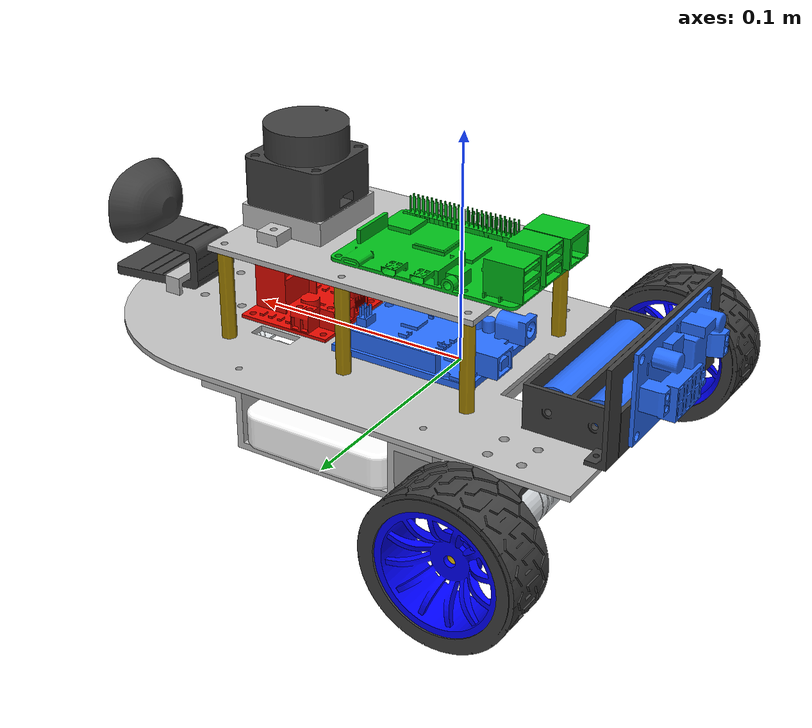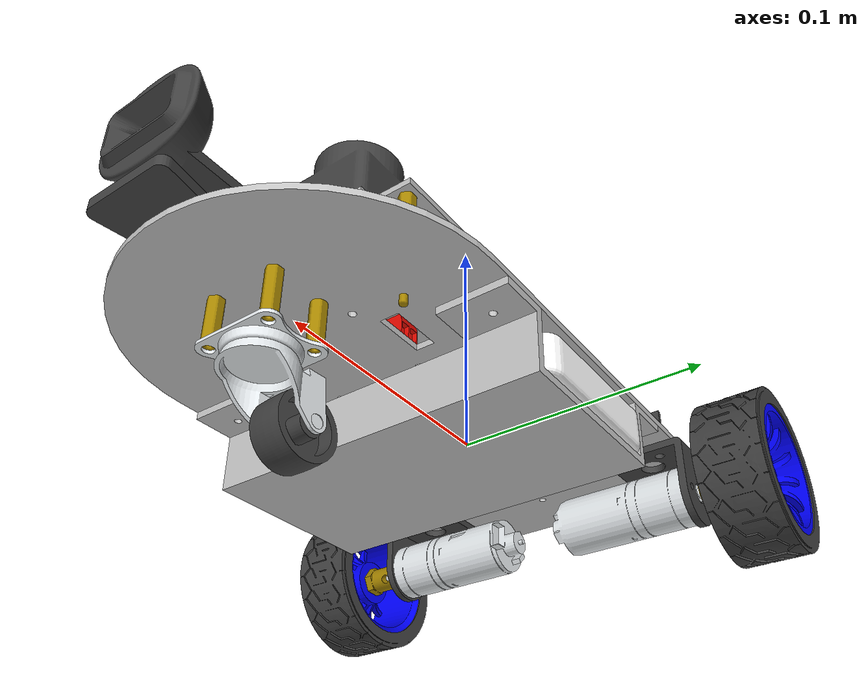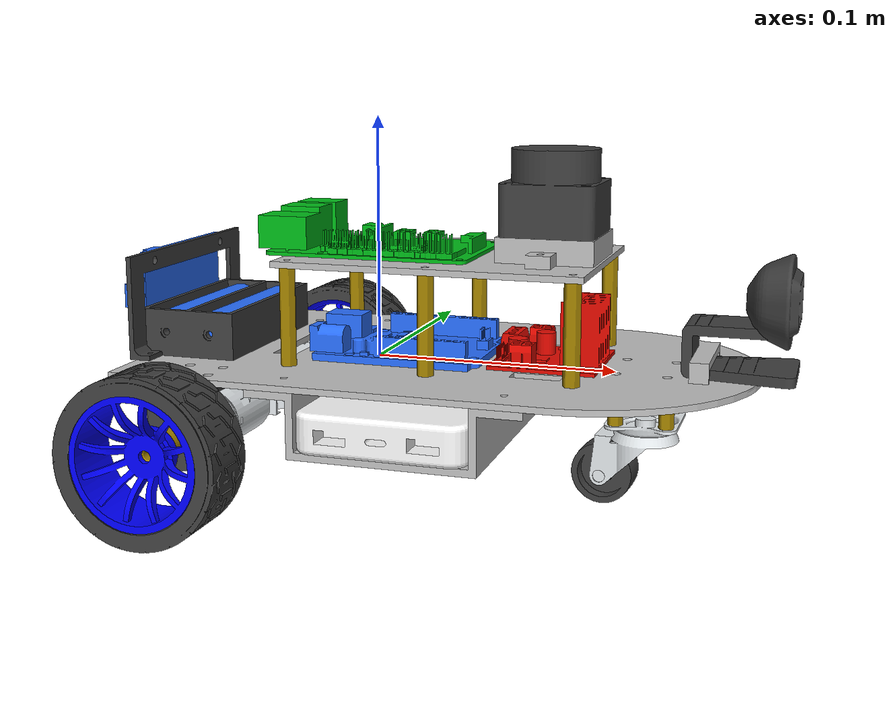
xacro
<?xml version="1.0" encoding="utf-8"?>
<robot xmlns:xacro="http://www.ros.org/wiki/xacro">

  <xacro:include filename="$(find diff_robot_dan_description)/urdf/materials_and_colors.xacro"/>

  <xacro:property name="caster_type" value="fixed" />

  <link name="base_link"/>

  <link
    name="base_platform">
    <inertial>
      <origin
        xyz="-4.2767E-06 0.029905 0.0013432"
        rpy="0 0 0" />
      <mass
        value="0.08062" />
      <inertia
        ixx="0.00037375"
        ixy="-1.0976E-08"
        ixz="-2.7281E-11"
        iyy="0.00012439"
        iyz="-7.8943E-07"
        izz="0.00049795" />
    </inertial>
    <visual>
      <origin
        xyz="0 0 0"
        rpy="0 0 0" />
      <geometry>
        <mesh
          filename="package://diff_robot_dan_description/meshes/base_platform.STL" />
      </geometry>
      <material name="grey_pla"/>
    </visual>
    <collision>
      <origin
        xyz="0 0 0"
        rpy="0 0 0" />
      <geometry>
        <mesh
          filename="package://diff_robot_dan_description/meshes/base_platform.STL" />
      </geometry>
    </collision>
  </link>

  <joint
    name="base_joint"
    type="fixed">
    <origin
      xyz="0 0 0"
      rpy="0 0 -1.5708" />
    <parent
      link="base_link" />
    <child
      link="base_platform" />
    <axis
      xyz="0 0 0" />
  </joint>

  <link name="base_footprint"/>

  <joint name="to_footprint" type="fixed">
    <parent
      link="base_platform"/>
    <child
      link="base_footprint"/>
    <axis
      xyz="0.0 0.0 0.0"/>
  </joint>

  <link
    name="motor_support_left">
    <inertial>
      <origin
        xyz="4.3741E-08 0.0086356 0.0087139"
        rpy="0 0 0" />
      <mass
        value="0.011753" />
      <inertia
        ixx="2.3658E-06"
        ixy="-4.3673E-12"
        ixz="-2.8469E-11"
        iyy="1.7995E-06"
        iyz="-6.6689E-07"
        izz="1.9957E-06" />
    </inertial>
    <visual>
      <origin
        xyz="0 0 0"
        rpy="1.5708 0 1.5708" />
      <geometry>
        <mesh
          filename="package://diff_robot_dan_description/meshes/motor_support_left.STL" />
      </geometry>
      <material name="black"/>
    </visual>
    <collision>
      <origin
        xyz="0 0 0"
        rpy="1.5708 0 1.5708" />
      <geometry>
        <mesh
          filename="package://diff_robot_dan_description/meshes/motor_support_left.STL" />
      </geometry>
    </collision>
  </link>
  <joint
    name="support_left_to_base"
    type="fixed">
    <origin
      xyz="-0.05605 -0.05525 0"
      rpy="0 1.5708 3.1416" />
    <parent
      link="base_platform" />
    <child
      link="motor_support_left" />
    <axis
      xyz="0 0 0" />
  </joint>
  <link
    name="motor_left">
    <inertial>
      <origin
        xyz="-7.2844E-06 -2.8965E-06 -0.0017141"
        rpy="0 0 0" />
      <mass
        value="0.069439" />
      <inertia
        ixx="2.1098E-05"
        ixy="-3.9135E-09"
        ixz="-3.1834E-09"
        iyy="2.1088E-05"
        iyz="-1.4966E-08"
        izz="4.9519E-06" />
    </inertial>
    <visual>
      <origin
        xyz="0 0 0"
        rpy="0 0 0" />
      <geometry>
        <mesh
          filename="package://diff_robot_dan_description/meshes/motor_left.STL" />
      </geometry>
      <material name="silver_metal"/>
    </visual>
    <collision>
      <origin
        xyz="0 0 0"
        rpy="0 0 0" />
      <geometry>
        <mesh
          filename="package://diff_robot_dan_description/meshes/motor_left.STL" />
      </geometry>
    </collision>
  </link>
  <joint
    name="motor_left_to_motor_support"
    type="fixed">
    <origin
      xyz="0.02025 0 -0.01155"
      rpy="0 0 -3.1416" />
    <parent
      link="motor_support_left" />
    <child
      link="motor_left" />
    <axis
      xyz="0 0 0" />
  </joint>
  <link
    name="shaft_left">
    <inertial>
      <origin
        xyz="9.3516E-05 -4.0811E-09 0.0062268"
        rpy="0 0 0" />
      <mass
        value="0.0012091" />
      <inertia
        ixx="1.7661E-08"
        ixy="-8.7073E-14"
        ixz="-2.7402E-10"
        iyy="1.7488E-08"
        iyz="-1.1687E-13"
        izz="2.3255E-09" />
    </inertial>
    <visual>
      <origin
        xyz="0 0 0"
        rpy="0 0 0" />
      <geometry>
        <mesh
          filename="package://diff_robot_dan_description/meshes/shaft_left.STL" />
      </geometry>
      <material name="silver_metal"/>
    </visual>
    <collision>
      <origin
        xyz="0 0 0"
        rpy="0 0 0" />
      <geometry>
        <mesh
          filename="package://diff_robot_dan_description/meshes/shaft_left.STL" />
      </geometry>
    </collision>
  </link>
  <joint
    name="shaft_left_to_motor"
    type="continuous">
    <origin
      xyz="9.7282E-05 0 0.026545"
      rpy="0 0 -1.3474" />
    <parent
      link="motor_left" />
    <child
      link="shaft_left" />
    <axis
      xyz="0 0 1" />
    <limit
      effort="1.0297"
      velocity="10.742" />
  </joint>
  <link
    name="coupling_left">
    <inertial>
      <origin
        xyz="-1.758E-08 0.011432 -5.9284E-10"
        rpy="0 0 0" />
      <mass
        value="0.015207" />
      <inertia
        ixx="7.3793E-07"
        ixy="-2.821E-12"
        ixz="4.7539E-13"
        iyy="2.7775E-07"
        iyz="-2.0427E-12"
        izz="7.4797E-07" />
    </inertial>
    <visual>
      <origin
        xyz="0 0 0"
        rpy="1.5708 0 0" />
      <geometry>
        <mesh
          filename="package://diff_robot_dan_description/meshes/coupling_left.STL" />
      </geometry>
      <material name="brass"/>
    </visual>
    <collision>
      <origin
        xyz="0 0 0"
        rpy="1.5708 0 0" />
      <geometry>
        <mesh
          filename="package://diff_robot_dan_description/meshes/coupling_left.STL" />
      </geometry>
    </collision>
  </link>
  <joint
    name="coupling_left_to_motor"
    type="fixed">
    <origin
      xyz="0 0 0.0046"
      rpy="0 0 1.7908" />
    <parent
      link="shaft_left" />
    <child
      link="coupling_left" />
    <axis
      xyz="0 0 0" />
  </joint>
  <link
    name="ring_left">
    <inertial>
      <origin
        xyz="1.4681E-08 -0.0013913 3.3977E-09"
        rpy="0 0 0" />
      <mass
        value="0.010918" />
      <inertia
        ixx="2.9186E-06"
        ixy="-5.2164E-12"
        ixz="-9.9865E-13"
        iyy="4.8444E-06"
        iyz="9.3002E-12"
        izz="2.9187E-06" />
    </inertial>
    <visual>
      <origin
        xyz="0 0 0"
        rpy="-1.5708 0 0" />
      <geometry>
        <mesh
          filename="package://diff_robot_dan_description/meshes/ring_left.STL" />
      </geometry>
      <material name="blue_metal"/>
    </visual>
    <collision>
      <origin
        xyz="0 0 0"
        rpy="-1.5708 0 0" />
      <geometry>
        <mesh
          filename="package://diff_robot_dan_description/meshes/ring_left.STL" />
      </geometry>
    </collision>
  </link>
  <joint
    name="ring_left_to_coupling"
    type="fixed">
    <origin
      xyz="0 0 0.021355"
      rpy="0 0 0" />
    <parent
      link="coupling_left" />
    <child
      link="ring_left" />
    <axis
      xyz="0 0 0" />
  </joint>

  <link
    name="neumatic_left">
    <inertial>
      <origin
        xyz="-5.051E-08 -1.2407E-06 -3.994E-10"
        rpy="0 0 0" />
      <mass
        value="0.039917" />
      <inertia
        ixx="1.9377E-05"
        ixy="2.9484E-13"
        ixz="1.4146E-13"
        iyy="3.4105E-05"
        iyz="6.8997E-12"
        izz="1.9378E-05" />
    </inertial>
    <visual>
      <origin
        xyz="0 0 0"
        rpy="1.5708 0 0" />
      <geometry>
        <mesh
          filename="package://diff_robot_dan_description/meshes/neumatic_left.STL" />
      </geometry>
      <material name="black"/>
    </visual>
    <collision>
      <origin
        xyz="0 0 0"
        rpy="1.5708 0 0" />
      <geometry>
        <sphere radius="0.033475"/>
        <!--mesh
          filename="package://diff_robot_dan_description/meshes/neumatic_left.STL" /-->
      </geometry>
    </collision>
  </link>

  <joint
    name="neumatic_left_to_ring"
    type="fixed">
    <origin
      xyz="0 0.00055 0"
      rpy="0 0 0" />
    <parent
      link="ring_left" />
    <child
      link="neumatic_left" />
    <axis
      xyz="0 0 0" />
  </joint>
  <link
    name="motor_support_right">
    <inertial>
      <origin
        xyz="4.3741E-08 0.0086356 0.0087139"
        rpy="0 0 0" />
      <mass
        value="0.011753" />
      <inertia
        ixx="2.3658E-06"
        ixy="-4.3673E-12"
        ixz="-2.8469E-11"
        iyy="1.7995E-06"
        iyz="-6.6689E-07"
        izz="1.9957E-06" />
    </inertial>
    <visual>
      <origin
        xyz="0 0 0"
        rpy="1.5708 0 1.5708" />
      <geometry>
        <mesh
          filename="package://diff_robot_dan_description/meshes/motor_support_right.STL" />
      </geometry>
      <material name="black"/>
    </visual>
    <collision>
      <origin
        xyz="0 0 0"
        rpy="1.5708 0 1.5708" />
      <geometry>
        <mesh
          filename="package://diff_robot_dan_description/meshes/motor_support_right.STL" />
      </geometry>
    </collision>
  </link>
  <joint
    name="support_right_to_base"
    type="fixed">
    <origin
      xyz="0.05605 -0.05525 0"
      rpy="0 1.5708 0" />
    <parent
      link="base_platform" />
    <child
      link="motor_support_right" />
    <axis
      xyz="0 0 0" />
  </joint>
  <link
    name="motor_right">
    <inertial>
      <origin
        xyz="-7.2843E-06 -2.8966E-06 -0.0017141"
        rpy="0 0 0" />
      <mass
        value="0.069439" />
      <inertia
        ixx="2.1098E-05"
        ixy="-3.9135E-09"
        ixz="-3.1834E-09"
        iyy="2.1088E-05"
        iyz="-1.4966E-08"
        izz="4.9519E-06" />
    </inertial>
    <visual>
      <origin
        xyz="0 0 0"
        rpy="0 0 0" />
      <geometry>
        <mesh
          filename="package://diff_robot_dan_description/meshes/motor_right.STL" />
      </geometry>
      <material name="silver_metal"/>
    </visual>
    <collision>
      <origin
        xyz="0 0 0"
        rpy="0 0 0" />
      <geometry>
        <mesh
          filename="package://diff_robot_dan_description/meshes/motor_right.STL" />
      </geometry>
    </collision>
  </link>
  <joint
    name="motor_right_to_support"
    type="fixed">
    <origin
      xyz="0.02025 0 -0.01155"
      rpy="0 0 -3.1416" />
    <parent
      link="motor_support_right" />
    <child
      link="motor_right" />
    <axis
      xyz="0 0 0" />
  </joint>
  <link
    name="shaft_right">
    <inertial>
      <origin
        xyz="9.35164931870833E-05 3.3094464453598E-08 0.0062267898913865"
        rpy="0 0 0" />
      <mass
        value="0.00120914331428052" />
      <inertia
        ixx="1.76613856649872E-08"
        ixy="-8.69060362380142E-14"
        ixz="-2.74018364433886E-10"
        iyy="1.74883320817116E-08"
        iyz="-1.1666347166096E-13"
        izz="2.32545172058691E-09" />
    </inertial>
    <visual>
      <origin
        xyz="0 0 0"
        rpy="0 0 0" />
      <geometry>
        <mesh
          filename="package://diff_robot_dan_description/meshes/shaft_right.STL" />
      </geometry>
      <material name="silver_metal"/>
    </visual>
    <collision>
      <origin
        xyz="0 0 0"
        rpy="0 0 0" />
      <geometry>
        <mesh
          filename="package://diff_robot_dan_description/meshes/shaft_right.STL" />
      </geometry>
    </collision>
  </link>
  <joint
    name="shaft_right_to_motor"
    type="continuous">
    <origin
      xyz="0 0 0.026545"
      rpy="0 0 -1.8068" />
    <parent
      link="motor_right" />
    <child
      link="shaft_right" />
    <axis
      xyz="0 0 -1" />
    <limit
      effort="1.0297"
      velocity="10.472" />
  </joint>
  <link
    name="coupling_right">
    <inertial>
      <origin
        xyz="-1.73707862399786E-08 0.0114319692475676 -3.0039553483574E-10"
        rpy="0 0 0" />
      <mass
        value="0.0152069037997272" />
      <inertia
        ixx="7.37926487293068E-07"
        ixy="-2.80610855598411E-12"
        ixz="4.83132664105218E-13"
        iyy="2.77753480931107E-07"
        iyz="-2.03744847744167E-12"
        izz="7.47968244758709E-07" />
    </inertial>
    <visual>
      <origin
        xyz="0 0 0"
        rpy="1.5708 0 0" />
      <geometry>
        <mesh
          filename="package://diff_robot_dan_description/meshes/coupling_right.STL" />
      </geometry>
      <material name="brass"/>
    </visual>
    <collision>
      <origin
        xyz="0 0 0"
        rpy="1.5708 0 0" />
      <geometry>
        <mesh
          filename="package://diff_robot_dan_description/meshes/coupling_right.STL" />
      </geometry>
    </collision>
  </link>
  <joint
    name="copling_right_to_shaft"
    type="fixed">
    <origin
      xyz="0 0 0.0046"
      rpy="0 0 -1.7908" />
    <parent
      link="shaft_right" />
    <child
      link="coupling_right" />
    <axis
      xyz="0 0 0" />
  </joint>
  <link
    name="ring_right">
    <inertial>
      <origin
        xyz="1.4681E-08 -0.0013913 3.3977E-09"
        rpy="0 0 0" />
      <mass
        value="0.010918" />
      <inertia
        ixx="2.9186E-06"
        ixy="-5.2164E-12"
        ixz="-9.9865E-13"
        iyy="4.8444E-06"
        iyz="9.3002E-12"
        izz="2.9187E-06" />
    </inertial>
    <visual>
      <origin
        xyz="0 0 0"
        rpy="-1.5708 0 0" />
      <geometry>
        <mesh
          filename="package://diff_robot_dan_description/meshes/ring_right.STL" />
      </geometry>
      <material name="blue_metal"/>
    </visual>
    <collision>
      <origin
        xyz="0 0 0"
        rpy="-1.5708 0 0" />
      <geometry>
        <mesh
          filename="package://diff_robot_dan_description/meshes/ring_right.STL" />
      </geometry>
    </collision>
  </link>
  <joint
    name="ring_right_to_coupling"
    type="fixed">
    <origin
      xyz="0 0 0.021355"
      rpy="0 0 0" />
    <parent
      link="coupling_right" />
    <child
      link="ring_right" />
    <axis
      xyz="0 0 0" />
  </joint>
  <link
    name="neumatic_right">
    <inertial>
      <origin
        xyz="-5.04288356628635E-08 -1.24068466458849E-06 -4.29302794702213E-10"
        rpy="0 0 0" />
      <mass
        value="0.039916568660989" />
      <inertia
        ixx="1.93774188193623E-05"
        ixy="2.86801069507243E-13"
        ixz="1.46766810443803E-13"
        iyy="3.41045674039519E-05"
        iyz="6.90707373043649E-12"
        izz="1.9377801310557E-05" />
    </inertial>
    <visual>
      <origin
        xyz="0 0 0"
        rpy="1.5708 0 0" />
      <geometry>
        <mesh
          filename="package://diff_robot_dan_description/meshes/neumatic_right.STL" />
      </geometry>
      <material name="black"/>
    </visual>
    <collision>
      <origin
        xyz="0 0 0"
        rpy="1.5708 0 0" />
      <geometry>
        <sphere radius="0.033475"/>
        <!--mesh
          filename="package://diff_robot_dan_description/meshes/neumatic_right.STL" /-->
      </geometry>
    </collision>
  </link>
  <joint
    name="neumatic_right_to_ring"
    type="fixed">
    <origin
      xyz="0 0.00055 0"
      rpy="0 0 0" />
    <parent
      link="ring_right" />
    <child
      link="neumatic_right" />
    <axis
      xyz="0 0 0" />
  </joint>
  <link
    name="battery_holder">
    <inertial>
      <origin
        xyz="-1.9815E-10 4.9468E-10 0.0069931"
        rpy="0 0 0" />
      <mass
        value="0.021448" />
      <inertia
        ixx="4.8979E-06"
        ixy="1.0061E-14"
        ixz="2.4403E-11"
        iyy="1.3843E-05"
        iyz="-6.5693E-15"
        izz="1.7136E-05" />
    </inertial>
    <visual>
      <origin
        xyz="0 0 0"
        rpy="0 0 0" />
      <geometry>
        <mesh
          filename="package://diff_robot_dan_description/meshes/battery_holder.STL" />
      </geometry>
      <material name="black"/>
    </visual>
    <collision>
      <origin
        xyz="0 0 0"
        rpy="0 0 0" />
      <geometry>
        <mesh
          filename="package://diff_robot_dan_description/meshes/battery_holder.STL" />
      </geometry>
    </collision>
  </link>
  <joint
    name="battery_to_base"
    type="fixed">
    <origin
      xyz="0 -0.07 0.0025"
      rpy="0 0 0" />
    <parent
      link="base_platform" />
    <child
      link="battery_holder" />
    <axis
      xyz="0 0 0" />
  </joint>
  <link
    name="battery_1">
    <inertial>
      <origin
        xyz="1.398E-08 1.9976E-09 0.00024774"
        rpy="0 0 0" />
      <mass
        value="0.16303" />
      <inertia
        ixx="6.0905E-05"
        ixy="5.9989E-13"
        ixz="-4.06E-11"
        iyy="6.0905E-05"
        iyz="-3.4902E-11"
        izz="5.8658E-06" />
    </inertial>
    <visual>
      <origin
        xyz="0 0 0"
        rpy="0 0 0" />
      <geometry>
        <mesh
          filename="package://diff_robot_dan_description/meshes/battery_1.STL" />
      </geometry>
      <material name="blue_electronic"/>
    </visual>
    <collision>
      <origin
        xyz="0 0 0"
        rpy="0 0 0" />
      <geometry>
        <mesh
          filename="package://diff_robot_dan_description/meshes/battery_1.STL" />
      </geometry>
    </collision>
  </link>
  <joint
    name="battery_1_to_holder"
    type="fixed">
    <origin
      xyz="0 -0.00975 0.01"
      rpy="-1.5708 0 -1.5708" />
    <parent
      link="battery_holder" />
    <child
      link="battery_1" />
    <axis
      xyz="0 0 1" />
  </joint>
  <link
    name="battery_2">
    <inertial>
      <origin
        xyz="1.398E-08 -1.9976E-09 -0.00024774"
        rpy="0 0 0" />
      <mass
        value="0.16303" />
      <inertia
        ixx="6.0905E-05"
        ixy="-5.9989E-13"
        ixz="4.06E-11"
        iyy="6.0905E-05"
        iyz="-3.4902E-11"
        izz="5.8658E-06" />
    </inertial>
    <visual>
      <origin
        xyz="0 0 0"
        rpy="0 0 0" />
      <geometry>
        <mesh
          filename="package://diff_robot_dan_description/meshes/battery_2.STL" />
      </geometry>
      <material name="blue_electronic"/>
    </visual>
    <collision>
      <origin
        xyz="0 0 0"
        rpy="0 0 0" />
      <geometry>
        <mesh
          filename="package://diff_robot_dan_description/meshes/battery_2.STL" />
      </geometry>
    </collision>
  </link>
  <joint
    name="battery_2_to_holder"
    type="fixed">
    <origin
      xyz="0 0.00975 0.01"
      rpy="1.5708 0 1.5708" />
    <parent
      link="battery_holder" />
    <child
      link="battery_2" />
    <axis
      xyz="0 0 1" />
  </joint>
  <link
    name="arduino">
    <inertial>
      <origin
        xyz="-0.0038426 0.0032752 -6.6854E-05"
        rpy="0 0 0" />
      <mass
        value="0.036702" />
      <inertia
        ixx="1.0144E-05"
        ixy="5.699E-07"
        ixz="-1.3819E-07"
        iyy="2.5461E-05"
        iyz="2.0305E-08"
        izz="1.6029E-05" />
    </inertial>
    <visual>
      <origin
        xyz="0 0 0"
        rpy="0 0 0" />
      <geometry>
        <mesh
          filename="package://diff_robot_dan_description/meshes/arduino.STL" />
      </geometry>
      <material name="blue_electronic"/>
    </visual>
    <collision>
      <origin
        xyz="0 0 0"
        rpy="0 0 0" />
      <geometry>
        <mesh
          filename="package://diff_robot_dan_description/meshes/arduino.STL" />
      </geometry>
    </collision>
  </link>
  <joint
    name="arduino_to_base"
    type="fixed">
    <origin
      xyz="0.001 0.0149 0.0025"
      rpy="1.5708 0 1.5708" />
    <parent
      link="base_platform" />
    <child
      link="arduino" />
    <axis
      xyz="0 0 0" />
  </joint>
  <link
    name="driver">
    <inertial>
      <origin
        xyz="-0.00053794 0.0010488 0.0067706"
        rpy="0 0 0" />
      <mass
        value="0.021255" />
      <inertia
        ixx="4.3343E-06"
        ixy="-1.4594E-07"
        ixz="-3.4291E-09"
        iyy="3.3344E-06"
        iyz="-7.0259E-07"
        izz="5.8242E-06" />
    </inertial>
    <visual>
      <origin
        xyz="0 0 0"
        rpy="0 0 0" />
      <geometry>
        <mesh
          filename="package://diff_robot_dan_description/meshes/driver.STL" />
      </geometry>
      <material name="red_electronic"/>
    </visual>
    <collision>
      <origin
        xyz="0 0 0"
        rpy="0 0 0" />
      <geometry>
        <mesh
          filename="package://diff_robot_dan_description/meshes/driver.STL" />
      </geometry>
    </collision>
  </link>
  <joint
    name="driver_to_base"
    type="fixed">
    <origin
      xyz="0 0.07415 0.0025"
      rpy="0 0 0" />
    <parent
      link="base_platform" />
    <child
      link="driver" />
    <axis
      xyz="0 0 0" />
  </joint>
  <link
    name="hex_support_s1">
    <inertial>
      <origin
        xyz="-3.873E-08 -1.4267E-09 0.0089627"
        rpy="0 0 0" />
      <mass
        value="0.00039676" />
      <inertia
        ixx="1.1512E-08"
        ixy="3.4795E-15"
        ixz="1.7979E-15"
        iyy="1.1511E-08"
        iyz="5.6571E-15"
        izz="1.948E-09" />
    </inertial>
    <visual>
      <origin
        xyz="0 0 0"
        rpy="0 0 0" />
      <geometry>
        <mesh
          filename="package://diff_robot_dan_description/meshes/hex_support_s1.STL" />
      </geometry>
      <material name="brass"/>
    </visual>
    <collision>
      <origin
        xyz="0 0 0"
        rpy="0 0 0" />
      <geometry>
        <mesh
          filename="package://diff_robot_dan_description/meshes/hex_support_s1.STL" />
      </geometry>
    </collision>
  </link>
  <joint
    name="hex_support_s1_to_base"
    type="fixed">
    <origin
      xyz="0.01285 0.1025 0"
      rpy="-3.1416 0 0.5236" />
    <parent
      link="base_platform" />
    <child
      link="hex_support_s1" />
    <axis
      xyz="0 0 0" />
  </joint>
  <link
    name="hex_support_s2">
    <inertial>
      <origin
        xyz="-3.873E-08 -1.4267E-09 0.0089627"
        rpy="0 0 0" />
      <mass
        value="0.00039676" />
      <inertia
        ixx="1.1512E-08"
        ixy="3.4795E-15"
        ixz="1.7979E-15"
        iyy="1.1511E-08"
        iyz="5.6571E-15"
        izz="1.948E-09" />
    </inertial>
    <visual>
      <origin
        xyz="0 0 0"
        rpy="0 0 0" />
      <geometry>
        <mesh
          filename="package://diff_robot_dan_description/meshes/hex_support_s2.STL" />
      </geometry>
      <material name="brass"/>
    </visual>
    <collision>
      <origin
        xyz="0 0 0"
        rpy="0 0 0" />
      <geometry>
        <mesh
          filename="package://diff_robot_dan_description/meshes/hex_support_s2.STL" />
      </geometry>
    </collision>
  </link>
  <joint
    name="hex_support_s2_to_base"
    type="fixed">
    <origin
      xyz="0.01285 0.1225 -0.0179"
      rpy="0 0 -0.5236" />
    <parent
      link="base_platform" />
    <child
      link="hex_support_s2" />
    <axis
      xyz="0 0 0" />
  </joint>
  <link
    name="hex_support_s3">
    <inertial>
      <origin
        xyz="-3.7544E-08 -2.1128E-09 0.0089627"
        rpy="0 0 0" />
      <mass
        value="0.00039676" />
      <inertia
        ixx="1.1512E-08"
        ixy="3.3218E-15"
        ixz="1.8189E-15"
        iyy="1.1511E-08"
        iyz="5.6406E-15"
        izz="1.948E-09" />
    </inertial>
    <visual>
      <origin
        xyz="0 0 0"
        rpy="0 0 0" />
      <geometry>
        <mesh
          filename="package://diff_robot_dan_description/meshes/hex_support_s3.STL" />
      </geometry>
      <material name="brass"/>
    </visual>
    <collision>
      <origin
        xyz="0 0 0"
        rpy="0 0 0" />
      <geometry>
        <mesh
          filename="package://diff_robot_dan_description/meshes/hex_support_s3.STL" />
      </geometry>
    </collision>
  </link>
  <joint
    name="hex_support_s3_to_base"
    type="fixed">
    <origin
      xyz="-0.01285 0.1025 0"
      rpy="-3.1416 0 2.618" />
    <parent
      link="base_platform" />
    <child
      link="hex_support_s3" />
    <axis
      xyz="0 0 0" />
  </joint>
  <link
    name="hex_support_s4">
    <inertial>
      <origin
        xyz="-3.7544E-08 -2.1128E-09 0.0089627"
        rpy="0 0 0" />
      <mass
        value="0.00039676" />
      <inertia
        ixx="1.1512E-08"
        ixy="3.3218E-15"
        ixz="1.8189E-15"
        iyy="1.1511E-08"
        iyz="5.6406E-15"
        izz="1.948E-09" />
    </inertial>
    <visual>
      <origin
        xyz="0 0 0"
        rpy="0 0 0" />
      <geometry>
        <mesh
          filename="package://diff_robot_dan_description/meshes/hex_support_s4.STL" />
      </geometry>
      <material name="brass"/>
    </visual>
    <collision>
      <origin
        xyz="0 0 0"
        rpy="0 0 0" />
      <geometry>
        <mesh
          filename="package://diff_robot_dan_description/meshes/hex_support_s4.STL" />
      </geometry>
    </collision>
  </link>
  <joint
    name="hex_support_s4_to_base"
    type="fixed">
    <origin
      xyz="-0.01285 0.1225 -0.0179"
      rpy="0 0 -2.618" />
    <parent
      link="base_platform" />
    <child
      link="hex_support_s4" />
    <axis
      xyz="0 0 0" />
  </joint>
  <link
    name="center_wheel_support">
    <inertial>
      <origin
        xyz="-7.8425E-12 0.0025704 -1.0795E-09"
        rpy="0 0 0" />
      <mass
        value="0.010585" />
      <inertia
        ixx="6.8468E-07"
        ixy="4.0238E-17"
        ixz="-7.8111E-14"
        iyy="1.2612E-06"
        iyz="-3.3077E-14"
        izz="6.2217E-07" />
    </inertial>
    <visual>
      <origin
        xyz="0 0 0"
        rpy="0 0 0" />
      <geometry>
        <mesh
          filename="package://diff_robot_dan_description/meshes/center_wheel_support.STL" />
      </geometry>
      <material name="silver_metal"/>
    </visual>
    <collision>
      <origin
        xyz="0 0 0"
        rpy="0 0 0" />
      <geometry>
        <mesh
          filename="package://diff_robot_dan_description/meshes/center_wheel_support.STL" />
      </geometry>
    </collision>
  </link>
  <joint
    name="center_support_to_base"
    type="fixed">
    <origin
      xyz="0 0.1125 -0.0179"
      rpy="-1.5708 0 1.5708" />
    <parent
      link="base_platform" />
    <child
      link="center_wheel_support" />
    <axis
      xyz="0 0 0" />
  </joint>
  <link
    name="roll_support">
    <inertial>
      <origin
        xyz="-0.0059893 0.0047248 3.4874E-09"
        rpy="0 0 0" />
      <mass
        value="0.016331" />
      <inertia
        ixx="1.5018E-06"
        ixy="3.2726E-07"
        ixz="-1.7434E-13"
        iyy="2.2832E-06"
        iyz="-3.5076E-13"
        izz="1.5926E-06" />
    </inertial>
    <visual>
      <origin
        xyz="0 0 0"
        rpy="0 0 0" />
      <geometry>
        <mesh
          filename="package://diff_robot_dan_description/meshes/roll_support.STL" />
      </geometry>
      <material name="silver_metal"/>
    </visual>
    <collision>
      <origin
        xyz="0 0 0"
        rpy="0 0 0" />
      <geometry>
        <mesh
          filename="package://diff_robot_dan_description/meshes/roll_support.STL" />
      </geometry>
    </collision>
  </link>
  <joint
    name="roll_support_to_wheel_support"
    type="${caster_type}">
    <origin
      xyz="0 0.004693 0"
      rpy="0 0.066802 0" />
    <parent
      link="center_wheel_support" />
    <child
      link="roll_support" />
    <axis
      xyz="0 1 0" />
  </joint>
  <link
    name="central_shaft">
    <inertial>
      <origin
        xyz="0 -2.7756E-17 2.4286E-17"
        rpy="0 0 0" />
      <mass
        value="0.0031416" />
      <inertia
        ixx="1.0963E-07"
        ixy="2.647E-23"
        ixz="1.7288E-22"
        iyy="1.0963E-07"
        iyz="6.4184E-23"
        izz="9.8175E-09" />
    </inertial>
    <visual>
      <origin
        xyz="0 0 0"
        rpy="0 0 0" />
      <geometry>
        <mesh
          filename="package://diff_robot_dan_description/meshes/central_shaft.STL" />
      </geometry>
      <material name="silver_metal"/>
    </visual>
    <collision>
      <origin
        xyz="0 0 0"
        rpy="0 0 0" />
      <geometry>
        <mesh
          filename="package://diff_robot_dan_description/meshes/central_shaft.STL" />
      </geometry>
    </collision>
  </link>
  <joint
    name="shaft_to_roll_support"
    type="${caster_type}">
    <origin
      xyz="-0.016111 0.018272 4.708E-05"
      rpy="0 0 0" />
    <parent
      link="roll_support" />
    <child
      link="central_shaft" />
    <axis
      xyz="0 0 1" />
  </joint>
  <link
    name="central_wheel">
    <inertial>
      <origin
        xyz="-5.2042E-18 1.641E-14 -4.2882E-15"
        rpy="0 0 0" />
      <mass
        value="0.0043493" />
      <inertia
        ixx="4.2486E-07"
        ixy="-9.9282E-22"
        ixz="2.0349E-22"
        iyy="2.6998E-07"
        iyz="-1.1978E-21"
        izz="2.6998E-07" />
    </inertial>
    <visual>
      <origin
        xyz="0 0 0"
        rpy="0 0 0" />
      <geometry>
        <mesh
          filename="package://diff_robot_dan_description/meshes/central_wheel.STL" />
      </geometry>
      <material name="black"/>
    </visual>
    <collision>
      <origin
        xyz="0 0 0"
        rpy="0 0 0" />
      <geometry>
        <sphere radius="0.0127"/>
        <!--mesh
          filename="package://diff_robot_dan_description/meshes/central_wheel.STL" /-->
      </geometry>
    </collision>
  </link>
  <joint
    name="central_wheel_to_shaft"
    type="fixed">
    <origin
      xyz="0 0 1.4798E-05"
      rpy="2.4245 1.5708 0" />
    <parent
      link="central_shaft" />
    <child
      link="central_wheel" />
    <axis
      xyz="0 0 0" />
  </joint>
  <link
    name="sup_platform">
    <inertial>
      <origin
        xyz="-9.3058E-10 -8.7809E-06 0.00125"
        rpy="0 0 0" />
      <mass
        value="0.026875" />
      <inertia
        ixx="3.4898E-05"
        ixy="2.6462E-14"
        ixz="-1.1073E-19"
        iyy="1.6106E-05"
        iyz="2.362E-15"
        izz="5.0976E-05" />
    </inertial>
    <visual>
      <origin
        xyz="0 0 0"
        rpy="0 0 0" />
      <geometry>
        <mesh
          filename="package://diff_robot_dan_description/meshes/sup_platform.STL" />
      </geometry>
      <material name="grey_pla"/>
    </visual>
    <collision>
      <origin
        xyz="0 0 0"
        rpy="0 0 0" />
      <geometry>
        <mesh
          filename="package://diff_robot_dan_description/meshes/sup_platform.STL" />
      </geometry>
    </collision>
  </link>
  <joint
    name="sup_platform_to_base"
    type="fixed">
    <origin
      xyz="0 0.0325 0.0424"
      rpy="0 0 0" />
    <parent
      link="base_platform" />
    <child
      link="sup_platform" />
    <axis
      xyz="0 0 0" />
  </joint>
  <link
    name="raspberry">
    <inertial>
      <origin
        xyz="-0.012157 0.00086825 0.0050276"
        rpy="0 0 0" />
      <mass
        value="0.040232" />
      <inertia
        ixx="1.1791E-05"
        ixy="-8.0579E-08"
        ixz="2.863E-06"
        iyy="2.6906E-05"
        iyz="-5.6994E-07"
        izz="3.6557E-05" />
    </inertial>
    <visual>
      <origin
        xyz="0 0 0"
        rpy="0 0 0" />
      <geometry>
        <mesh
          filename="package://diff_robot_dan_description/meshes/raspberry.STL" />
      </geometry>
      <material name="green_electronic"/>
    </visual>
    <collision>
      <origin
        xyz="0 0 0"
        rpy="0 0 0" />
      <geometry>
        <mesh
          filename="package://diff_robot_dan_description/meshes/raspberry.STL" />
      </geometry>
    </collision>
  </link>
  <joint
    name="raspberry_to_sup_base"
    type="fixed">
    <origin
      xyz="0.0023552 -0.030064 0.0025"
      rpy="-0.061358 0 1.5708" />
    <parent
      link="sup_platform" />
    <child
      link="raspberry" />
    <axis
      xyz="0 0 0" />
  </joint>
  <link
    name="lidar_base">
    <inertial>
      <origin
        xyz="4.76737475267162E-09 -2.34376004715209E-10 0.00517211597652074"
        rpy="0 0 0" />
      <mass
        value="0.0170174944442866" />
      <inertia
        ixx="2.30741133256961E-06"
        ixy="-1.10315764453569E-07"
        ixz="-1.3170258630919E-12"
        iyy="2.87577287694704E-06"
        iyz="1.11832991479685E-13"
        izz="4.78074170602697E-06" />
    </inertial>
    <visual>
      <origin
        xyz="0 0 0"
        rpy="0 0 0" />
      <geometry>
        <mesh
          filename="package://diff_robot_dan_description/meshes/lidar_base.STL" />
      </geometry>
      <material name="grey_pla"/>
    </visual>
    <collision>
      <origin
        xyz="0 0 0"
        rpy="0 0 0" />
      <geometry>
        <mesh
          filename="package://diff_robot_dan_description/meshes/lidar_base.STL" />
      </geometry>
    </collision>
  </link>
  <joint
    name="lidar_base_to_sup_base"
    type="fixed">
    <origin
      xyz="0 0.042 0.0025"
      rpy="0 0 0" />
    <parent
      link="sup_platform" />
    <child
      link="lidar_base" />
    <axis
      xyz="0 0 0" />
  </joint>
  <link
    name="lidar">
    <inertial>
      <origin
        xyz="-8.65987423912112E-05 3.00342080120973E-07 -0.0158709631049187"
        rpy="0 0 0" />
      <mass
        value="0.0583443536768669" />
      <inertia
        ixx="1.11767591923787E-05"
        ixy="8.19309373146885E-08"
        ixz="6.12677214969589E-08"
        iyy="1.1094235674574E-05"
        iyz="3.01401445393558E-10"
        izz="1.24859796770116E-05" />
    </inertial>
    <visual>
      <origin
        xyz="0 0 0"
        rpy="0 0 0" />
      <geometry>
        <mesh
          filename="package://diff_robot_dan_description/meshes/lidar.STL" />
      </geometry>
      <material name="black"/>
    </visual>
    <collision>
      <origin
        xyz="0 0 0"
        rpy="0 0 0" />
      <geometry>
        <mesh
          filename="package://diff_robot_dan_description/meshes/lidar.STL" />
      </geometry>
    </collision>
  </link>
  <joint
    name="lidar_to_lidar_base"
    type="fixed">
    <origin
      xyz="0 0 0.01"
      rpy="-3.1416 0 -1.5708" />
    <parent
      link="lidar_base" />
    <child
      link="lidar" />
    <axis
      xyz="0 0 0" />
  </joint>
  <link
    name="power_bank_support">
    <inertial>
      <origin
        xyz="-4.3276E-10 -0.034501 -0.018512"
        rpy="0 0 0" />
      <mass
        value="0.054871" />
      <inertia
        ixx="5.3299E-05"
        ixy="6.7817E-15"
        ixz="3.5306E-13"
        iyy="0.00010525"
        iyz="1.0405E-09"
        izz="0.0001506" />
    </inertial>
    <visual>
      <origin
        xyz="0 0 0"
        rpy="0 0 0" />
      <geometry>
        <mesh
          filename="package://diff_robot_dan_description/meshes/power_bank_support.STL" />
      </geometry>
      <material name="grey_pla"/>
    </visual>
    <collision>
      <origin
        xyz="0 0 0"
        rpy="0 0 0" />
      <geometry>
        <mesh
          filename="package://diff_robot_dan_description/meshes/power_bank_support.STL" />
      </geometry>
    </collision>
  </link>
  <joint
    name="power_support_to_base"
    type="fixed">
    <origin
      xyz="0 0.059586 0"
      rpy="0 0 0" />
    <parent
      link="base_platform" />
    <child
      link="power_bank_support" />
    <axis
      xyz="0 0 0" />
  </joint>
  <link
    name="power_bank">
    <inertial>
      <origin
        xyz="-0.00068925 -1.3878E-17 0.0080025"
        rpy="0 0 0" />
      <mass
        value="0.20175" />
      <inertia
        ixx="8.2243E-05"
        ixy="-1.4837E-18"
        ixz="-3.5118E-08"
        iyy="0.00035012"
        iyz="3.8612E-13"
        izz="0.00042374" />
    </inertial>
    <visual>
      <origin
        xyz="0 0 0"
        rpy="0 0 0" />
      <geometry>
        <mesh
          filename="package://diff_robot_dan_description/meshes/power_bank.STL" />
      </geometry>
      <material name="white"/>
    </visual>
    <collision>
      <origin
        xyz="0 0 0"
        rpy="0 0 0" />
      <geometry>
        <mesh
          filename="package://diff_robot_dan_description/meshes/power_bank.STL" />
      </geometry>
    </collision>
  </link>
  <joint
    name="power_bank_to_support"
    type="fixed">
    <origin
      xyz="0 -0.03475 -0.023"
      rpy="0 0 0" />
    <parent
      link="power_bank_support" />
    <child
      link="power_bank" />
    <axis
      xyz="0 0 0" />
  </joint>
  <link
    name="camera">
    <inertial>
      <origin
        xyz="9.7623E-09 0.0001601 -0.0081003"
        rpy="0 0 1.5707" />
      <mass
        value="0.02241" />
      <inertia
        ixx="6.8681E-06"
        ixy="-2.8862E-12"
        ixz="6.9612E-14"
        iyy="5.8417E-06"
        iyz="1.5201E-06"
        izz="4.866E-06" />
    </inertial>
    <visual>
      <origin
        xyz="0 0 0"
        rpy="0 0 1.5707" />
      <geometry>
        <mesh
          filename="package://diff_robot_dan_description/meshes/camera.STL" />
      </geometry>
      <material name="black"/>
    </visual>
    <collision>
      <origin
        xyz="0 0 0"
        rpy="0 0 1.5707" />
      <geometry>
        <mesh
          filename="package://diff_robot_dan_description/meshes/camera.STL" />
      </geometry>
    </collision>
  </link>
  <joint
    name="camera_to_base"
    type="fixed">
    <origin
      xyz="0 0.15525 0.0323"
      rpy="0 0 1.5707" />
    <parent
      link="base_platform" />
    <child
      link="camera" />
    <axis
      xyz="0 0 0" />
  </joint>
  <link
    name="hex_support_m1">
    <inertial>
      <origin
        xyz="-1.2775E-08 6.9871E-10 0.018649"
        rpy="0 0 0" />
      <mass
        value="0.010437" />
      <inertia
        ixx="1.4892E-06"
        ixy="5.2591E-15"
        ixz="3.3325E-12"
        iyy="1.4892E-06"
        iyz="3.8585E-13"
        izz="5.171E-08" />
    </inertial>
    <visual>
      <origin
        xyz="0 0 0"
        rpy="0 0 0" />
      <geometry>
        <mesh
          filename="package://diff_robot_dan_description/meshes/hex_support_m1.STL" />
      </geometry>
      <material name="brass"/>
    </visual>
    <collision>
      <origin
        xyz="0 0 0"
        rpy="0 0 0" />
      <geometry>
        <mesh
          filename="package://diff_robot_dan_description/meshes/hex_support_m1.STL" />
      </geometry>
    </collision>
  </link>
  <joint
    name="hex_support_m1_to_base"
    type="fixed">
    <origin
      xyz="0.0375 -0.025 0.0025"
      rpy="0 0 2.618" />
    <parent
      link="base_platform" />
    <child
      link="hex_support_m1" />
    <axis
      xyz="0 0 0" />
  </joint>
  <link
    name="hex_support_m2">
    <inertial>
      <origin
        xyz="-1.28962488465945E-08 4.87893031531073E-10 0.0186494267227174"
        rpy="0 0 0" />
      <mass
        value="0.0104370763004655" />
      <inertia
        ixx="1.48922995809896E-06"
        ixy="3.89533633544294E-15"
        ixz="3.35524402215023E-12"
        iyy="1.48922882736901E-06"
        iyz="4.25322339240719E-13"
        izz="5.17103699125775E-08" />
    </inertial>
    <visual>
      <origin
        xyz="0 0 0"
        rpy="0 0 0" />
      <geometry>
        <mesh
          filename="package://diff_robot_dan_description/meshes/hex_support_m2.STL" />
      </geometry>
      <material name="brass"/>
    </visual>
    <collision>
      <origin
        xyz="0 0 0"
        rpy="0 0 0" />
      <geometry>
        <mesh
          filename="package://diff_robot_dan_description/meshes/hex_support_m2.STL" />
      </geometry>
    </collision>
  </link>
  <joint
    name="hex_support_m2_to_base"
    type="fixed">
    <origin
      xyz="0.0375 0.0325 0.0025"
      rpy="0 0 -2.618" />
    <parent
      link="base_platform" />
    <child
      link="hex_support_m2" />
    <axis
      xyz="0 0 0" />
  </joint>
  <link
    name="hex_support_m3">
    <inertial>
      <origin
        xyz="-1.27745335698481E-08 6.9871051999737E-10 0.0186494267227175"
        rpy="0 0 0" />
      <mass
        value="0.0104370763004665" />
      <inertia
        ixx="1.48922995829572E-06"
        ixy="5.25911840813087E-15"
        ixz="3.3324538622836E-12"
        iyy="1.48922882572881E-06"
        iyz="3.85848631953205E-13"
        izz="5.17103684689377E-08" />
    </inertial>
    <visual>
      <origin
        xyz="0 0 0"
        rpy="0 0 0" />
      <geometry>
        <mesh
          filename="package://diff_robot_dan_description/meshes/hex_support_m3.STL" />
      </geometry>
      <material name="brass"/>
    </visual>
    <collision>
      <origin
        xyz="0 0 0"
        rpy="0 0 0" />
      <geometry>
        <mesh
          filename="package://diff_robot_dan_description/meshes/hex_support_m3.STL" />
      </geometry>
    </collision>
  </link>
  <joint
    name="hex_support_m3_to_base"
    type="fixed">
    <origin
      xyz="0.0375 0.09 0.0025"
      rpy="0 0 -0.5236" />
    <parent
      link="base_platform" />
    <child
      link="hex_support_m3" />
    <axis
      xyz="0 0 0" />
  </joint>
  <link
    name="hex_support_m4">
    <inertial>
      <origin
        xyz="-1.28962490131279E-08 4.8789312520614E-10 0.0186494267227175"
        rpy="0 0 0" />
      <mass
        value="0.0104370763004655" />
      <inertia
        ixx="1.48922995809896E-06"
        ixy="3.89533628250338E-15"
        ixz="3.35524403420148E-12"
        iyy="1.48922882736901E-06"
        iyz="4.25322332714478E-13"
        izz="5.17103699125778E-08" />
    </inertial>
    <visual>
      <origin
        xyz="0 0 0"
        rpy="0 0 0" />
      <geometry>
        <mesh
          filename="package://diff_robot_dan_description/meshes/hex_support_m4.STL" />
      </geometry>
      <material name="brass"/>
    </visual>
    <collision>
      <origin
        xyz="0 0 0"
        rpy="0 0 0" />
      <geometry>
        <mesh
          filename="package://diff_robot_dan_description/meshes/hex_support_m4.STL" />
      </geometry>
    </collision>
  </link>
  <joint
    name="hex_support_m4_to_base"
    type="fixed">
    <origin
      xyz="-0.0375 -0.025 0.0025"
      rpy="0 0 0.5236" />
    <parent
      link="base_platform" />
    <child
      link="hex_support_m4" />
    <axis
      xyz="0 0 0" />
  </joint>
  <link
    name="hex_support_m5">
    <inertial>
      <origin
        xyz="-1.27745337988316E-08 6.98710408975067E-10 0.0186494267227175"
        rpy="0 0 0" />
      <mass
        value="0.0104370763004664" />
      <inertia
        ixx="1.48922995829569E-06"
        ixy="5.25911835519131E-15"
        ixz="3.33245387880175E-12"
        iyy="1.48922882572878E-06"
        iyz="3.85848640885222E-13"
        izz="5.17103684689375E-08" />
    </inertial>
    <visual>
      <origin
        xyz="0 0 0"
        rpy="0 0 0" />
      <geometry>
        <mesh
          filename="package://diff_robot_dan_description/meshes/hex_support_m5.STL" />
      </geometry>
      <material name="brass"/>
    </visual>
    <collision>
      <origin
        xyz="0 0 0"
        rpy="0 0 0" />
      <geometry>
        <mesh
          filename="package://diff_robot_dan_description/meshes/hex_support_m5.STL" />
      </geometry>
    </collision>
  </link>
  <joint
    name="hex_support_m5_to_base"
    type="fixed">
    <origin
      xyz="-0.0375 0.0325 0.0025"
      rpy="0 0 -0.5236" />
    <parent
      link="base_platform" />
    <child
      link="hex_support_m5" />
    <axis
      xyz="0 0 0" />
  </joint>
  <link
    name="hex_support_m6">
    <inertial>
      <origin
        xyz="0 0 0"
        rpy="0 0 0" />
      <mass
        value="0" />
      <inertia
        ixx="1.48922995829569E-06"
        ixy="5.25911835519131E-15"
        ixz="3.33245387880175E-12"
        iyy="1.48922882572878E-06"
        iyz="3.85848640885222E-13"
        izz="5.17103684689375E-08" />
    </inertial>
    <visual>
      <origin
        xyz="0 0 0"
        rpy="0 0 0" />
      <geometry>
        <mesh
          filename="package://diff_robot_dan_description/meshes/hex_support_m6.STL" />
      </geometry>
      <material name="brass"/>
    </visual>
    <collision>
      <origin
        xyz="0 0 0"
        rpy="0 0 0" />
      <geometry>
        <mesh
          filename="package://diff_robot_dan_description/meshes/hex_support_m6.STL" />
      </geometry>
    </collision>
  </link>
  <joint
    name="hex_support_m6_to_base"
    type="fixed">
    <origin
      xyz="-0.0375 0.09 0.0025"
      rpy="0 0 -2.618" />
    <parent
      link="base_platform" />
    <child
      link="hex_support_m6" />
    <axis
      xyz="0 0 0" />
  </joint>

  <link
    name="voltage_regulator_support">
    <inertial>
      <origin
        xyz="0 -0.01248 0.0062"
        rpy="0 0 0" />
      <mass
        value="0.0063217" />
      <inertia
        ixx="1176.59E-9"
        ixy="0.00000"
        ixz="0.00000"
        iyy="4434.68E-9"
        iyz="5.48E-9"
        izz="5594.9E-9" />
    </inertial>
    <visual>
      <origin
        xyz="0 0 0"
        rpy="1.5707 0 0" />
      <geometry>
        <mesh
          filename="package://diff_robot_dan_description/meshes/voltage_regulator_support_2.STL"
          scale="0.001 0.001 0.001"/>
      </geometry>
      <material name="black"/>
    </visual>
    <collision>
      <origin
        xyz="0 0 0"
        rpy="1.5707 0 0" />
      <geometry>
        <mesh
          filename="package://diff_robot_dan_description/meshes/voltage_regulator_support_2.STL"
          scale="0.001 0.001 0.001" />
      </geometry>
    </collision>
  </link>
  <joint
    name="voltage_reg_support_to_base"
    type="fixed">
    <origin
      xyz="-0.0485 -0.0815 0.0025"
      rpy="0 0 0" />
    <parent
      link="base_platform" />
    <child
      link="voltage_regulator_support" />
    <axis
      xyz="0 0 0" />
  </joint>

  <link
    name="voltage_regulator">
    <inertial>
      <origin
        xyz="0.0012574 0.00088917 0.0063217"
        rpy="0 0 0" />
      <mass
        value="0.0063217" />
      <inertia
        ixx="3.0667E-06"
        ixy="-1.079E-07"
        ixz="-7.1385E-08"
        iyy="7.3036E-06"
        iyz="-5.4148E-08"
        izz="9.8754E-06" />
    </inertial>
    <visual>
      <origin
        xyz="0 0 0"
        rpy="1.5707 0 0" />
      <geometry>
        <mesh
          filename="package://diff_robot_dan_description/meshes/voltage_regulator.STL" />
      </geometry>
      <material name="blue_electronic"/>
    </visual>
    <collision>
      <origin
        xyz="0 0 0"
        rpy="1.5707 0 0" />
      <geometry>
        <mesh
          filename="package://diff_robot_dan_description/meshes/voltage_regulator.STL" />
      </geometry>
    </collision>
  </link>
  <joint
    name="voltage_regulator_to_support"
    type="fixed">
    <origin
      xyz="0.0485 -0.0075 0.0215"
      rpy="0 0 0" />
    <parent
      link="voltage_regulator_support" />
    <child
      link="voltage_regulator" />
    <axis
      xyz="0 0 0" />
  </joint>

</robot>

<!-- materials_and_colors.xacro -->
<robot xmlns:xacro="http://www.ros.org/wiki/xacro">

    <material
        name="grey_pla">
        <color rgba="0.75294 0.75294 0.75294 1" />
    </material>

    <material
        name="silver_metal">
        <color rgba="0.89804 0.91765 0.92941 1" />
    </material>

    <material
        name="black">
        <color rgba="0.250980392156863 0.250980392156863 0.250980392156863 1" />
    </material>

    <material
        name="brass">
        <color rgba="0.64706 0.51765 0 1" />
    </material>

    <material
        name="blue_metal">
        <color rgba="0 0 1 1" />
    </material>

    <material
        name="blue_electronic">
        <color rgba="0.161 0.435 1 1" />
    </material>

    <material
        name="white">
        <color rgba="1 1 1 1" />
    </material>

    <material
        name="red_electronic">
        <color rgba="0.894 0.039 0 1" />
    </material>

    <material
        name="green_electronic">
        <color rgba="0 0.741 0.098 1" />
    </material>

</robot>
